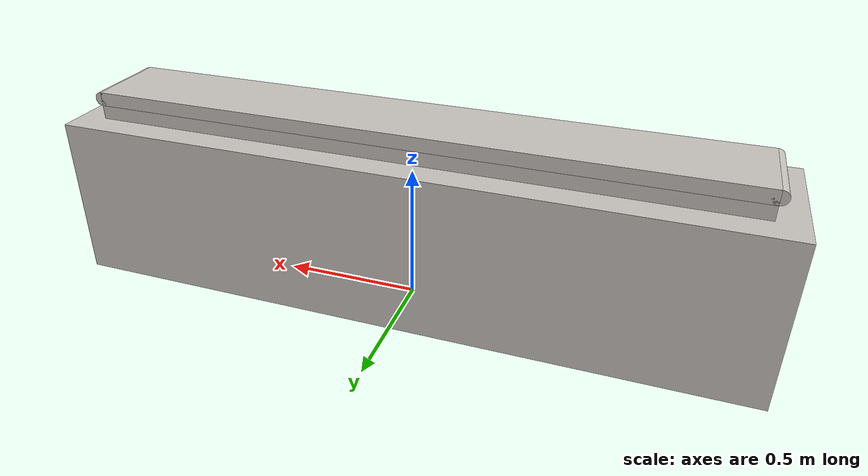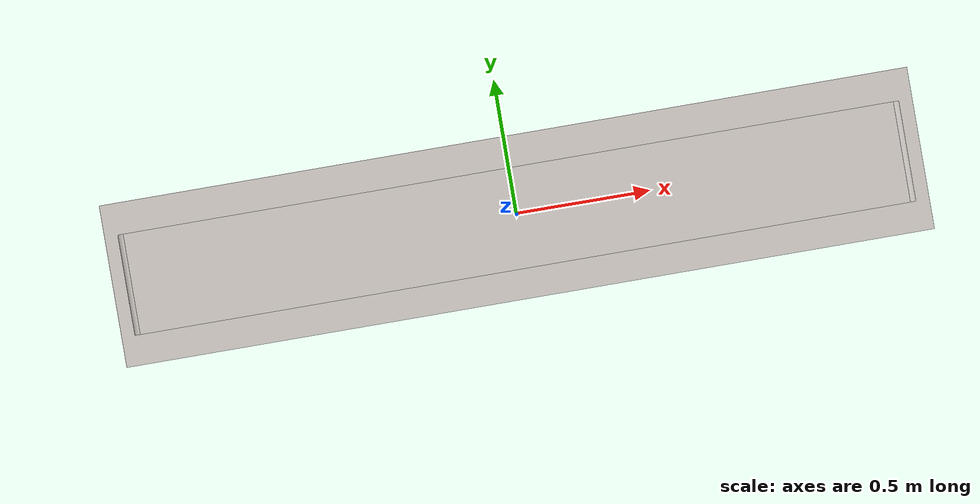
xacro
<?xml version="1.0"?>
<robot xmlns:xacro="http://www.ros.org/wiki/xacro"
       name="conveyor_belt_simple" >

  <xacro:include filename="$(find conveyor_belt_simulation)/urdf/conveyor_belt_simple.template.xacro" />
  <xacro:property name="world" value="world" />

  <!-- world link -->
  <link name="world" />

  <xacro:create_conveyor_belt world="${world}" length="2.5" width="0.5" height="0.7">
    <origin xyz="0 0 0" rpy="0 0 0" />
  </xacro:create_conveyor_belt>

</robot>

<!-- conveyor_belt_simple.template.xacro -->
<robot name="conveyor_belt" xmlns:xacro="http://www.ros.org/wiki/xacro">

  <material name="metal_grey">
    <color rgba="0.768627450980392 0.749019607843137 0.729411764705882 1" />
  </material>
  <xacro:property name="metal" value="metal_grey"/>
  <xacro:property name="padding" value="0.1"/>

  <xacro:macro name="create_conveyor_belt" params="world *origin length width height">

    <xacro:property name="length_belt" value="${length - 2*padding}"/>
    <xacro:property name="width_belt" value="${width - 2*padding}"/>
    <xacro:property name="height_belt" value="0.1"/>

    <xacro:property name="length_base" value="${length}"/>
    <xacro:property name="width_base" value="${width}"/>
    <xacro:property name="height_base" value="${height - height_belt}"/>

    <xacro:include filename="$(find conveyor_belt_simulation)/urdf/belt_component.template.xacro" />
    <xacro:property name="belt_base" value="conveyor_belt_base" />

    <link name = "conveyor_belt_base">
      <visual>
        <origin xyz="0 0 ${height_base/2}" rpy="0 0 0"/>
        <geometry>
          <box size = "${length_base} ${width_base} ${height_base}" />
        </geometry>
        <material name="${metal}"/>
      </visual>
      <collision>
        <origin xyz="0 0 ${height_base/2}" rpy="0 0 0"/>
        <geometry>
          <box size = "${length_base} ${width_base} ${height_base}" />
        </geometry>
      </collision>
      <inertial>
        <origin xyz="0 0 0" rpy="0 0 0"/>
        <mass value="100"/>
        <inertia ixx="100" iyy="1781.5" izz="1784.72" ixy="0" iyz="0" ixz="0"/>
      </inertial>
    </link>
    <gazebo reference="conveyor_belt_base">
      <material>Gazebo/White</material>
    </gazebo>
    <joint name="conveyor_belt_fixed_base" type="fixed">
      <xacro:insert_block name="origin" />
      <parent link="${world}" />
      <child link="conveyor_belt_base" />
    </joint>

    <xacro:create_belt_component belt_base="${belt_base}" length="${length_belt}" width="${width_belt}" height="${height_belt}">
      <origin xyz="0 0 ${height_base}" rpy="0 0 0" />
    </xacro:create_belt_component>
  </xacro:macro>

</robot>

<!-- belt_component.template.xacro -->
<robot name="belt_component" xmlns:xacro="http://www.ros.org/wiki/xacro">

  <material name="belt_metal_grey">
    <color rgba="0.768627450980392 0.749019607843137 0.729411764705882 1" />
  </material>
  <xacro:property name="belt_metal" value="belt_metal_grey"/>

  <xacro:macro name="create_belt_component" params="belt_base *origin length width height">

    <xacro:property name="belt_thickness" value="0.05"/>
    <xacro:property name="PI" value="3.1415926535897931"/>

    <link name = "belt_bottom">
      <visual>
        <origin xyz="0 0 ${(height-belt_thickness)/2}" rpy="0 0 0"/>
        <geometry>
          <box size = "${length} ${width} ${height-belt_thickness}" />
        </geometry>
        <material name="${belt_metal}"/>
      </visual>
      <collision>
        <origin xyz="0 0 ${(height-belt_thickness)/2}" rpy="0 0 0"/>
        <geometry>
          <box size = "${length} ${width} ${height-belt_thickness}" />
        </geometry>
      </collision>
      <inertial>
        <origin xyz="0 0 0" rpy="0 0 0"/>
        <mass value="100"/>
        <inertia ixx="100" iyy="1781.5" izz="1784.72" ixy="0" iyz="0" ixz="0"/>
      </inertial>
    </link>
    <gazebo reference="belt_bottom">
      <material>Gazebo/White</material>
    </gazebo>
    <joint name="belt_bottom_joint" type="fixed">
      <xacro:insert_block name="origin" />
      <parent link="${belt_base}" />
      <child link="belt_bottom" />
    </joint>

    <link name = "belt_top">
      <visual>
        <origin xyz="0 0 ${belt_thickness/2}" rpy="0 0 0"/>
        <geometry>
          <box size = "${length} ${width} ${belt_thickness}" />
        </geometry>
        <material name="${belt_metal}"/>
      </visual>
      <collision>
        <origin xyz="0 0 ${belt_thickness/2}" rpy="0 0 0"/>
        <geometry>
          <box size = "${length} ${width} ${belt_thickness}" />
        </geometry>
      </collision>
      <inertial>
        <origin xyz="0 0 0" rpy="0 0 0"/>
        <mass value="100"/>
        <inertia ixx="100" iyy="1781.5" izz="1784.72" ixy="0" iyz="0" ixz="0"/>
      </inertial>
    </link>
    <gazebo reference="belt_top">
      <material>Gazebo/Green</material>
    </gazebo>
    <joint name="belt_top_joint" type="fixed">
      <origin xyz="0 0 ${height-belt_thickness}" rpy="0 0 0" />
      <parent link="belt_bottom" />
      <child link="belt_top" />
    </joint>

    <link name = "belt_top_tip_0">
      <visual>
        <origin xyz="0 0 0" rpy="${PI/2} 0 0"/>
        <geometry>
          <cylinder radius="${belt_thickness/2}" length="${width}"/>
        </geometry>
        <material name="${belt_metal}"/>
      </visual>
      <collision>
        <origin xyz="0 0 0" rpy="${PI/2} 0 0"/>
        <geometry>
          <cylinder radius="${belt_thickness/2}" length="${width}"/>
        </geometry>
      </collision>
      <inertial>
        <origin xyz="0 0 0" rpy="0 0 0"/>
        <mass value="100"/>
        <inertia ixx="100" iyy="1781.5" izz="1784.72" ixy="0" iyz="0" ixz="0"/>
      </inertial>
    </link>
    <gazebo reference="belt_top_tip_0">
      <material>Gazebo/Green</material>
    </gazebo>
    <joint name="belt_top_tip_0" type="fixed">
      <origin xyz="${-length/2} 0 ${belt_thickness/2}" rpy="0 0 0" />
      <parent link="belt_top" />
      <child link="belt_top_tip_0" />
    </joint>

    <link name = "belt_top_tip_1">
      <visual>
        <origin xyz="0 0 0" rpy="${PI/2} 0 0"/>
        <geometry>
          <cylinder radius="${belt_thickness/2}" length="${width}"/>
        </geometry>
        <material name="${belt_metal}"/>
      </visual>
      <collision>
        <origin xyz="0 0 0" rpy="${PI/2} 0 0"/>
        <geometry>
          <cylinder radius="${belt_thickness/2}" length="${width}"/>
        </geometry>
      </collision>
      <inertial>
        <origin xyz="0 0 0" rpy="0 0 0"/>
        <mass value="100"/>
        <inertia ixx="100" iyy="1781.5" izz="1784.72" ixy="0" iyz="0" ixz="0"/>
      </inertial>
    </link>
    <gazebo reference="belt_top_tip_1">
      <material>Gazebo/Green</material>
    </gazebo>
    <joint name="belt_top_tip_1" type="fixed">
      <origin xyz="${length/2} 0 ${belt_thickness/2}" rpy="0 0 0" />
      <parent link="belt_top" />
      <child link="belt_top_tip_1" />
    </joint>

    <link name = "conveyor_belt_moving">
      <collision>
        <origin xyz="0 0 ${belt_thickness/2}" rpy="0 0 0"/>
        <geometry>
          <box size = "${length} ${width} ${belt_thickness}" />
        </geometry>
      </collision>
      <inertial>
        <origin xyz="0 0 0" rpy="0 0 0"/>
        <mass value="100"/>
        <inertia ixx="100" iyy="1781.5" izz="1784.72" ixy="0" iyz="0" ixz="0"/>
      </inertial>
    </link>
    <gazebo reference="conveyor_belt_moving">
      <mu2>1.0</mu2>
      <material>Gazebo/GreenTransparent</material>
    </gazebo>
    <joint name = "belt_joint" type = "prismatic">
      <parent link = "belt_top"/>
      <child link = "conveyor_belt_moving"/>
      <origin xyz = "0 0 0.01" rpy = "0 0 0"/>
      <limit effort = "30" velocity = "100" lower = "0" upper = "1.0" />
      <axis xyz = "1 0 0"/>
    </joint>

    <gazebo>
      <plugin name="conveyor_belt_plugin" filename="libROSConveyorBeltPlugin.so">
        <enable_topic>conveyor_enable</enable_topic>
        <population_rate_modifier_topic>population/rate_modifier</population_rate_modifier_topic>
        <link>conveyor_belt_moving</link>
        <power>0</power>
        <update_rate>20</update_rate>
      </plugin>
    </gazebo>

  </xacro:macro>

</robot>
